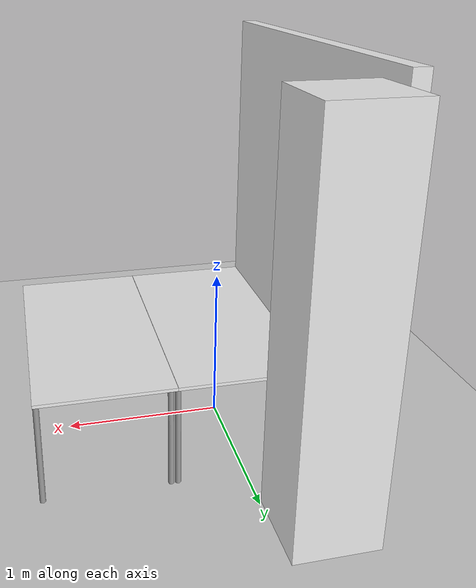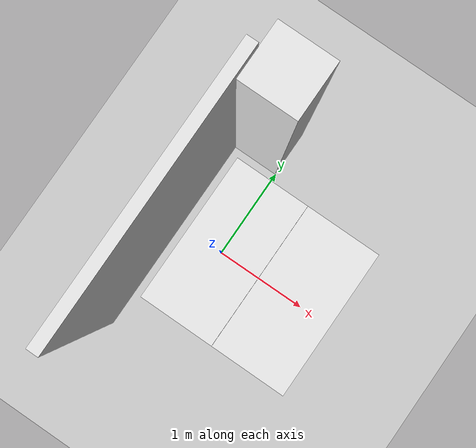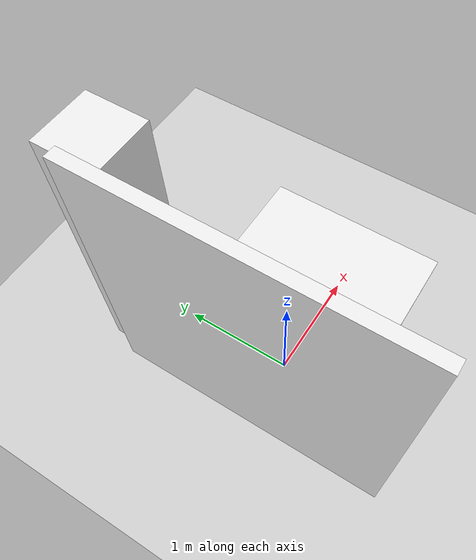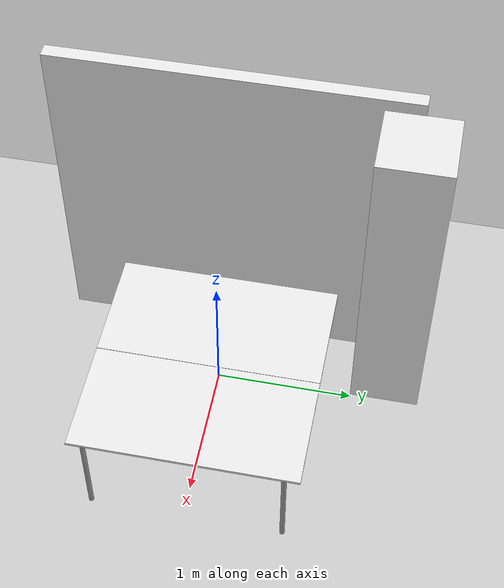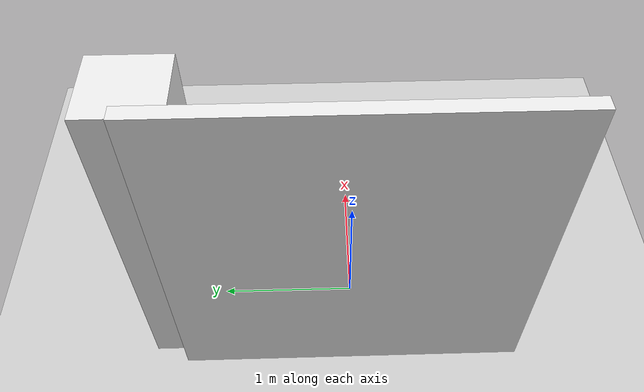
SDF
<sdf version="1.7">
 <world name="default">
  <plugin name="ros_link_attacher_plugin" filename="libgazebo_ros_link_attacher.so"/>
  <light name="sun" type="directional">
   <pose>0 0 10 0 -0 0</pose>
   <diffuse>0.8 0.8 0.8 1</diffuse>
   <specular>0.2 0.2 0.2 1</specular>
   <attenuation>
    <range>1000</range>
    <constant>0.9</constant>
    <linear>0.01</linear>
    <quadratic>0.001</quadratic>
   </attenuation>
   <direction>-0.5 0.1 -0.9</direction>
   <spot><inner_angle>0</inner_angle><outer_angle>0</outer_angle><falloff>0</falloff></spot>
  </light>
  <model name="ground_plane">
   <static>1</static>
   <link name="link1">
    <collision name="collision">
     <geometry><plane><normal>0 0 1</normal><size>100 100</size></plane></geometry>
     <surface>
      <contact><collide_bitmask>65535</collide_bitmask></contact>
      <friction><ode><mu>100</mu><mu2>50</mu2></ode></friction>
     </surface>
    </collision>
    <visual name="visual">
     <cast_shadows>0</cast_shadows>
     <geometry><plane><normal>0 0 1</normal><size>100 100</size></plane></geometry>
     <material>
      <script><uri>file://media/materials/scripts/gazebo.material</uri><name>Gazebo/Grey</name></script>
     </material>
    </visual>
   </link>
  </model>
  <gravity>0 0 -9.8</gravity>
  <magnetic_field>6e-06 2.3e-05 -4.2e-05</magnetic_field>
  <atmosphere type="adiabatic"/>
  <physics type="ode">
   <max_step_size>0.001</max_step_size>
   <real_time_factor>1</real_time_factor>
   <real_time_update_rate>1000</real_time_update_rate>
  </physics>
  <scene><ambient>0.4 0.4 0.4 1</ambient><background>0.7 0.7 0.7 1</background><shadows>1</shadows></scene>
  <spherical_coordinates>
   <surface_model>EARTH_WGS84</surface_model>
   <latitude_deg>0</latitude_deg>
   <longitude_deg>0</longitude_deg>
   <elevation>0</elevation>
   <heading_deg>0</heading_deg>
  </spherical_coordinates>
  <model name="table2">
   <link name="link2">
    <inertial>
     <inertia><ixx>0</ixx><ixy>0</ixy><ixz>0</ixz><iyy>0</iyy><iyz>0</iyz><izz>0</izz></inertia>
     <mass>0</mass>
    </inertial>
    <pose>0.011874 -0.057526 0 0 -0 0</pose>
    <visual name="back_left_leg">
     <pose>-0.68 0.38 0.35 0 -0 0</pose>
     <geometry><cylinder><radius>0.017374</radius><length>0.7</length></cylinder></geometry>
     <material>
      <script><uri>file://media/materials/scripts/gazebo.material</uri><name>Gazebo/Grey</name></script>
      <shader type="pixel"><normal_map>__default__</normal_map></shader>
      <ambient>0.3 0.3 0.3 1</ambient>
      <diffuse>0.7 0.7 0.7 1</diffuse>
      <specular>0.01 0.01 0.01 1</specular>
      <emissive>0 0 0 1</emissive>
     </material>
    </visual>
    <visual name="visual1">
     <pose>0 0 0.71 0 -0 0</pose>
     <geometry><box><size>1.58 0.8 0.019708</size></box></geometry>
     <material>
      <script><uri>file://media/materials/scripts/gazebo.material</uri><name>Gazebo/White</name></script>
      <shader type="pixel"><normal_map>__default__</normal_map></shader>
      <ambient>0.9 0.9 0.9 1</ambient>
      <diffuse>1 1 1 1</diffuse>
      <specular>0.2 0.2 0.2 1</specular>
      <emissive>0 0 0 1</emissive>
     </material>
    </visual>
    <visual name="front_left_leg">
     <pose>0.68 0.38 0.35 0 -0 0</pose>
     <geometry><cylinder><radius>0.017374</radius><length>0.7</length></cylinder></geometry>
     <material>
      <script><uri>file://media/materials/scripts/gazebo.material</uri><name>Gazebo/Grey</name></script>
      <shader type="pixel"><normal_map>__default__</normal_map></shader>
      <ambient>0.3 0.3 0.3 1</ambient>
      <diffuse>0.7 0.7 0.7 1</diffuse>
      <specular>0.01 0.01 0.01 1</specular>
      <emissive>0 0 0 1</emissive>
     </material>
    </visual>
    <visual name="back_right_leg">
     <pose>-0.68 -0.38 0.35 0 -0 0</pose>
     <geometry><cylinder><radius>0.017374</radius><length>0.7</length></cylinder></geometry>
     <material>
      <script><uri>file://media/materials/scripts/gazebo.material</uri><name>Gazebo/Grey</name></script>
      <shader type="pixel"><normal_map>__default__</normal_map></shader>
      <ambient>0.3 0.3 0.3 1</ambient>
      <diffuse>0.7 0.7 0.7 1</diffuse>
      <specular>0.01 0.01 0.01 1</specular>
      <emissive>0 0 0 1</emissive>
     </material>
    </visual>
    <visual name="front_right_leg">
     <pose>0.68 -0.38 0.35 0 -0 0</pose>
     <geometry><cylinder><radius>0.017374</radius><length>0.7</length></cylinder></geometry>
     <material>
      <script><uri>file://media/materials/scripts/gazebo.material</uri><name>Gazebo/Grey</name></script>
      <shader type="pixel"><normal_map>__default__</normal_map></shader>
      <ambient>0.3 0.3 0.3 1</ambient>
      <diffuse>0.7 0.7 0.7 1</diffuse>
      <specular>0.01 0.01 0.01 1</specular>
      <emissive>0 0 0 1</emissive>
     </material>
    </visual>
    <collision name="front_right_leg">
     <pose>0.68 -0.38 0.35 0 -0 0</pose>
     <geometry><cylinder><radius>0.017374</radius><length>0.7</length></cylinder></geometry>
     <surface>
      <friction>
       <ode><mu>1</mu><mu2>1</mu2><fdir1>0 0 0</fdir1><slip1>0</slip1><slip2>0</slip2></ode>
       <torsional>
        <coefficient>1</coefficient>
        <patch_radius>0</patch_radius>
        <surface_radius>0</surface_radius>
        <use_patch_radius>1</use_patch_radius>
        <ode><slip>0</slip></ode>
       </torsional>
      </friction>
      <bounce><restitution_coefficient>0</restitution_coefficient><threshold>1e+06</threshold></bounce>
      <contact>
       <collide_without_contact>0</collide_without_contact>
       <collide_without_contact_bitmask>1</collide_without_contact_bitmask>
       <collide_bitmask>1</collide_bitmask>
       <ode>
        <soft_cfm>0</soft_cfm>
        <soft_erp>0.2</soft_erp>
        <kp>1e+13</kp>
        <kd>1</kd>
        <max_vel>0.01</max_vel>
        <min_depth>0</min_depth>
       </ode>
       <bullet>
        <split_impulse>1</split_impulse>
        <split_impulse_penetration_threshold>-0.01</split_impulse_penetration_threshold>
        <soft_cfm>0</soft_cfm>
        <soft_erp>0.2</soft_erp>
        <kp>1e+13</kp>
        <kd>1</kd>
       </bullet>
      </contact>
     </surface>
    </collision>
    <collision name="surface">
     <pose>0 0 0.71 0 -0 0</pose>
     <geometry><box><size>1.58 0.8 0.019708</size></box></geometry>
     <surface>
      <friction>
       <ode><mu>0.6</mu><mu2>0.6</mu2><fdir1>0 0 0</fdir1><slip1>0</slip1><slip2>0</slip2></ode>
       <torsional>
        <coefficient>1</coefficient>
        <patch_radius>0</patch_radius>
        <surface_radius>0</surface_radius>
        <use_patch_radius>1</use_patch_radius>
        <ode><slip>0</slip></ode>
       </torsional>
      </friction>
      <bounce><restitution_coefficient>0</restitution_coefficient><threshold>1e+06</threshold></bounce>
      <contact>
       <collide_without_contact>0</collide_without_contact>
       <collide_without_contact_bitmask>1</collide_without_contact_bitmask>
       <collide_bitmask>1</collide_bitmask>
       <ode>
        <soft_cfm>0</soft_cfm>
        <soft_erp>0.2</soft_erp>
        <kp>1e+13</kp>
        <kd>1</kd>
        <max_vel>0.01</max_vel>
        <min_depth>0</min_depth>
       </ode>
       <bullet>
        <split_impulse>1</split_impulse>
        <split_impulse_penetration_threshold>-0.01</split_impulse_penetration_threshold>
        <soft_cfm>0</soft_cfm>
        <soft_erp>0.2</soft_erp>
        <kp>1e+13</kp>
        <kd>1</kd>
       </bullet>
      </contact>
     </surface>
    </collision>
    <collision name="front_left_leg">
     <pose>0.68 0.38 0.35 0 -0 0</pose>
     <geometry><cylinder><radius>0.017374</radius><length>0.7</length></cylinder></geometry>
     <surface>
      <friction>
       <ode><mu>1</mu><mu2>1</mu2><fdir1>0 0 0</fdir1><slip1>0</slip1><slip2>0</slip2></ode>
       <torsional>
        <coefficient>1</coefficient>
        <patch_radius>0</patch_radius>
        <surface_radius>0</surface_radius>
        <use_patch_radius>1</use_patch_radius>
        <ode><slip>0</slip></ode>
       </torsional>
      </friction>
      <bounce><restitution_coefficient>0</restitution_coefficient><threshold>1e+06</threshold></bounce>
      <contact>
       <collide_without_contact>0</collide_without_contact>
       <collide_without_contact_bitmask>1</collide_without_contact_bitmask>
       <collide_bitmask>1</collide_bitmask>
       <ode>
        <soft_cfm>0</soft_cfm>
        <soft_erp>0.2</soft_erp>
        <kp>1e+13</kp>
        <kd>1</kd>
        <max_vel>0.01</max_vel>
        <min_depth>0</min_depth>
       </ode>
       <bullet>
        <split_impulse>1</split_impulse>
        <split_impulse_penetration_threshold>-0.01</split_impulse_penetration_threshold>
        <soft_cfm>0</soft_cfm>
        <soft_erp>0.2</soft_erp>
        <kp>1e+13</kp>
        <kd>1</kd>
       </bullet>
      </contact>
     </surface>
    </collision>
    <collision name="back_left_leg">
     <pose>-0.68 0.38 0.35 0 -0 0</pose>
     <geometry><cylinder><radius>0.017374</radius><length>0.7</length></cylinder></geometry>
     <surface>
      <friction>
       <ode><mu>1</mu><mu2>1</mu2><fdir1>0 0 0</fdir1><slip1>0</slip1><slip2>0</slip2></ode>
       <torsional>
        <coefficient>1</coefficient>
        <patch_radius>0</patch_radius>
        <surface_radius>0</surface_radius>
        <use_patch_radius>1</use_patch_radius>
        <ode><slip>0</slip></ode>
       </torsional>
      </friction>
      <bounce><restitution_coefficient>0</restitution_coefficient><threshold>1e+06</threshold></bounce>
      <contact>
       <collide_without_contact>0</collide_without_contact>
       <collide_without_contact_bitmask>1</collide_without_contact_bitmask>
       <collide_bitmask>1</collide_bitmask>
       <ode>
        <soft_cfm>0</soft_cfm>
        <soft_erp>0.2</soft_erp>
        <kp>1e+13</kp>
        <kd>1</kd>
        <max_vel>0.01</max_vel>
        <min_depth>0</min_depth>
       </ode>
       <bullet>
        <split_impulse>1</split_impulse>
        <split_impulse_penetration_threshold>-0.01</split_impulse_penetration_threshold>
        <soft_cfm>0</soft_cfm>
        <soft_erp>0.2</soft_erp>
        <kp>1e+13</kp>
        <kd>1</kd>
       </bullet>
      </contact>
     </surface>
    </collision>
    <collision name="back_right_leg">
     <pose>-0.68 -0.38 0.35 0 -0 0</pose>
     <geometry><cylinder><radius>0.017374</radius><length>0.7</length></cylinder></geometry>
     <surface>
      <friction>
       <ode><mu>1</mu><mu2>1</mu2><fdir1>0 0 0</fdir1><slip1>0</slip1><slip2>0</slip2></ode>
       <torsional>
        <coefficient>1</coefficient>
        <patch_radius>0</patch_radius>
        <surface_radius>0</surface_radius>
        <use_patch_radius>1</use_patch_radius>
        <ode><slip>0</slip></ode>
       </torsional>
      </friction>
      <bounce><restitution_coefficient>0</restitution_coefficient><threshold>1e+06</threshold></bounce>
      <contact>
       <collide_without_contact>0</collide_without_contact>
       <collide_without_contact_bitmask>1</collide_without_contact_bitmask>
       <collide_bitmask>1</collide_bitmask>
       <ode>
        <soft_cfm>0</soft_cfm>
        <soft_erp>0.2</soft_erp>
        <kp>1e+13</kp>
        <kd>1</kd>
        <max_vel>0.01</max_vel>
        <min_depth>0</min_depth>
       </ode>
       <bullet>
        <split_impulse>1</split_impulse>
        <split_impulse_penetration_threshold>-0.01</split_impulse_penetration_threshold>
        <soft_cfm>0</soft_cfm>
        <soft_erp>0.2</soft_erp>
        <kp>1e+13</kp>
        <kd>1</kd>
       </bullet>
      </contact>
     </surface>
    </collision>
   </link>
   <link name="link_0">
    <inertial>
     <mass>0.605339</mass>
     <inertia>
      <ixx>0.300898</ixx>
      <ixy>0</ixy>
      <ixz>0</ixz>
      <iyy>0.301339</iyy>
      <iyz>0</iyz>
      <izz>0.025546</izz>
     </inertia>
    </inertial>
    <pose>1.2342 0.24 1.21333 0 0 -1.57</pose>
    <visual name="visual">
     <geometry><box><size>0.507519 0.498836 2.39082</size></box></geometry>
     <material>
      <lighting>1</lighting>
      <script><uri>file://media/materials/scripts/gazebo.material</uri><name>Gazebo/White</name></script>
      <shader type="pixel"><normal_map>__default__</normal_map></shader>
      <ambient>0.6 0.6 0.6 1</ambient>
      <diffuse>0.8 0.8 0.8 1</diffuse>
      <specular>0.2 0.2 0.2 1</specular>
      <emissive>0 0 0 1</emissive>
     </material>
    </visual>
    <collision name="collision">
     <geometry><box><size>0.507519 0.498836 2.39082</size></box></geometry>
     <surface>
      <friction>
       <ode><mu>1</mu><mu2>1</mu2><fdir1>0 0 0</fdir1><slip1>0</slip1><slip2>0</slip2></ode>
       <torsional>
        <coefficient>1</coefficient>
        <patch_radius>0</patch_radius>
        <surface_radius>0</surface_radius>
        <use_patch_radius>1</use_patch_radius>
        <ode><slip>0</slip></ode>
       </torsional>
      </friction>
      <bounce><restitution_coefficient>0</restitution_coefficient><threshold>1e+06</threshold></bounce>
      <contact>
       <collide_without_contact>0</collide_without_contact>
       <collide_without_contact_bitmask>1</collide_without_contact_bitmask>
       <collide_bitmask>1</collide_bitmask>
       <ode>
        <soft_cfm>0</soft_cfm>
        <soft_erp>0.2</soft_erp>
        <kp>1e+13</kp>
        <kd>1</kd>
        <max_vel>0.01</max_vel>
        <min_depth>0</min_depth>
       </ode>
       <bullet>
        <split_impulse>1</split_impulse>
        <split_impulse_penetration_threshold>-0.01</split_impulse_penetration_threshold>
        <soft_cfm>0</soft_cfm>
        <soft_erp>0.2</soft_erp>
        <kp>1e+13</kp>
        <kd>1</kd>
       </bullet>
      </contact>
     </surface>
    </collision>
   </link>
   <link name="link_1">
    <inertial>
     <mass>2.83509</mass>
     <inertia><ixx>2.13522</ixx><ixy>0</ixy><ixz>0</ixz><iyy>2.13522</iyy><iyz>0</iyz><izz>0.472514</izz></inertia>
    </inertial>
    <pose>-0 0.54 1.2435 0 0 -1.57</pose>
    <visual name="visual">
     <geometry><box><size>0.1 2.5 2.5</size></box></geometry>
     <material>
      <lighting>1</lighting>
      <script><uri>file://media/materials/scripts/gazebo.material</uri><name>Gazebo/White</name></script>
      <shader type="pixel"><normal_map>__default__</normal_map></shader>
      <ambient>0.919 0.931 0.98 1</ambient>
      <diffuse>1 1 1 1</diffuse>
      <specular>0.2 0.2 0.2 1</specular>
      <emissive>0 0 0 1</emissive>
     </material>
    </visual>
    <collision name="collision">
     <geometry><box><size>0.1 2.5 2.5</size></box></geometry>
     <surface>
      <friction>
       <ode><mu>1</mu><mu2>1</mu2><fdir1>0 0 0</fdir1><slip1>0</slip1><slip2>0</slip2></ode>
       <torsional>
        <coefficient>1</coefficient>
        <patch_radius>0</patch_radius>
        <surface_radius>0</surface_radius>
        <use_patch_radius>1</use_patch_radius>
        <ode><slip>0</slip></ode>
       </torsional>
      </friction>
      <bounce><restitution_coefficient>0</restitution_coefficient><threshold>1e+06</threshold></bounce>
      <contact>
       <collide_without_contact>0</collide_without_contact>
       <collide_without_contact_bitmask>1</collide_without_contact_bitmask>
       <collide_bitmask>1</collide_bitmask>
       <ode>
        <soft_cfm>0</soft_cfm>
        <soft_erp>0.2</soft_erp>
        <kp>1e+13</kp>
        <kd>1</kd>
        <max_vel>0.01</max_vel>
        <min_depth>0</min_depth>
       </ode>
       <bullet>
        <split_impulse>1</split_impulse>
        <split_impulse_penetration_threshold>-0.01</split_impulse_penetration_threshold>
        <soft_cfm>0</soft_cfm>
        <soft_erp>0.2</soft_erp>
        <kp>1e+13</kp>
        <kd>1</kd>
       </bullet>
      </contact>
     </surface>
    </collision>
   </link>
   <static>1</static>
   <pose>-0.022089 0.010177 0 0 -0 1.57</pose>
  </model>
  <model name="table2_2">
   <link name="link2">
    <inertial>
     <inertia><ixx>0</ixx><ixy>0</ixy><ixz>0</ixz><iyy>0</iyy><iyz>0</iyz><izz>0</izz></inertia>
     <mass>0</mass>
    </inertial>
    <pose>0.011874 -0.057526 0 0 -0 0</pose>
    <visual name="back_left_leg">
     <pose>-0.68 0.38 0.35 0 -0 0</pose>
     <geometry><cylinder><radius>0.017374</radius><length>0.7</length></cylinder></geometry>
     <material>
      <script><uri>file://media/materials/scripts/gazebo.material</uri><name>Gazebo/Grey</name></script>
      <shader type="pixel"><normal_map>__default__</normal_map></shader>
      <ambient>0.3 0.3 0.3 1</ambient>
      <diffuse>0.7 0.7 0.7 1</diffuse>
      <specular>0.01 0.01 0.01 1</specular>
      <emissive>0 0 0 1</emissive>
     </material>
    </visual>
    <visual name="visual1">
     <pose>0 0 0.71 0 -0 0</pose>
     <geometry><box><size>1.58 0.8 0.019708</size></box></geometry>
     <material>
      <script><uri>file://media/materials/scripts/gazebo.material</uri><name>Gazebo/White</name></script>
      <shader type="pixel"><normal_map>__default__</normal_map></shader>
      <ambient>0.9 0.9 0.9 1</ambient>
      <diffuse>1 1 1 1</diffuse>
      <specular>0.2 0.2 0.2 1</specular>
      <emissive>0 0 0 1</emissive>
     </material>
    </visual>
    <visual name="front_left_leg">
     <pose>0.68 0.38 0.35 0 -0 0</pose>
     <geometry><cylinder><radius>0.017374</radius><length>0.7</length></cylinder></geometry>
     <material>
      <script><uri>file://media/materials/scripts/gazebo.material</uri><name>Gazebo/Grey</name></script>
      <shader type="pixel"><normal_map>__default__</normal_map></shader>
      <ambient>0.3 0.3 0.3 1</ambient>
      <diffuse>0.7 0.7 0.7 1</diffuse>
      <specular>0.01 0.01 0.01 1</specular>
      <emissive>0 0 0 1</emissive>
     </material>
    </visual>
    <visual name="back_right_leg">
     <pose>-0.68 -0.38 0.35 0 -0 0</pose>
     <geometry><cylinder><radius>0.017374</radius><length>0.7</length></cylinder></geometry>
     <material>
      <script><uri>file://media/materials/scripts/gazebo.material</uri><name>Gazebo/Grey</name></script>
      <shader type="pixel"><normal_map>__default__</normal_map></shader>
      <ambient>0.3 0.3 0.3 1</ambient>
      <diffuse>0.7 0.7 0.7 1</diffuse>
      <specular>0.01 0.01 0.01 1</specular>
      <emissive>0 0 0 1</emissive>
     </material>
    </visual>
    <visual name="front_right_leg">
     <pose>0.68 -0.38 0.35 0 -0 0</pose>
     <geometry><cylinder><radius>0.017374</radius><length>0.7</length></cylinder></geometry>
     <material>
      <script><uri>file://media/materials/scripts/gazebo.material</uri><name>Gazebo/Grey</name></script>
      <shader type="pixel"><normal_map>__default__</normal_map></shader>
      <ambient>0.3 0.3 0.3 1</ambient>
      <diffuse>0.7 0.7 0.7 1</diffuse>
      <specular>0.01 0.01 0.01 1</specular>
      <emissive>0 0 0 1</emissive>
     </material>
    </visual>
    <collision name="front_right_leg">
     <pose>0.68 -0.38 0.35 0 -0 0</pose>
     <geometry><cylinder><radius>0.017374</radius><length>0.7</length></cylinder></geometry>
     <surface>
      <friction>
       <ode><mu>1</mu><mu2>1</mu2><fdir1>0 0 0</fdir1><slip1>0</slip1><slip2>0</slip2></ode>
       <torsional>
        <coefficient>1</coefficient>
        <patch_radius>0</patch_radius>
        <surface_radius>0</surface_radius>
        <use_patch_radius>1</use_patch_radius>
        <ode><slip>0</slip></ode>
       </torsional>
      </friction>
      <bounce><restitution_coefficient>0</restitution_coefficient><threshold>1e+06</threshold></bounce>
      <contact>
       <collide_without_contact>0</collide_without_contact>
       <collide_without_contact_bitmask>1</collide_without_contact_bitmask>
       <collide_bitmask>1</collide_bitmask>
       <ode>
        <soft_cfm>0</soft_cfm>
        <soft_erp>0.2</soft_erp>
        <kp>1e+13</kp>
        <kd>1</kd>
        <max_vel>0.01</max_vel>
        <min_depth>0</min_depth>
       </ode>
       <bullet>
        <split_impulse>1</split_impulse>
        <split_impulse_penetration_threshold>-0.01</split_impulse_penetration_threshold>
        <soft_cfm>0</soft_cfm>
        <soft_erp>0.2</soft_erp>
        <kp>1e+13</kp>
        <kd>1</kd>
       </bullet>
      </contact>
     </surface>
    </collision>
    <collision name="surface">
     <pose>0 0 0.71 0 -0 0</pose>
     <geometry><box><size>1.58 0.8 0.019708</size></box></geometry>
     <surface>
      <friction>
       <ode><mu>0.6</mu><mu2>0.6</mu2><fdir1>0 0 0</fdir1><slip1>0</slip1><slip2>0</slip2></ode>
       <torsional>
        <coefficient>1</coefficient>
        <patch_radius>0</patch_radius>
        <surface_radius>0</surface_radius>
        <use_patch_radius>1</use_patch_radius>
        <ode><slip>0</slip></ode>
       </torsional>
      </friction>
      <bounce><restitution_coefficient>0</restitution_coefficient><threshold>1e+06</threshold></bounce>
      <contact>
       <collide_without_contact>0</collide_without_contact>
       <collide_without_contact_bitmask>1</collide_without_contact_bitmask>
       <collide_bitmask>1</collide_bitmask>
       <ode>
        <soft_cfm>0</soft_cfm>
        <soft_erp>0.2</soft_erp>
        <kp>1e+13</kp>
        <kd>1</kd>
        <max_vel>0.01</max_vel>
        <min_depth>0</min_depth>
       </ode>
       <bullet>
        <split_impulse>1</split_impulse>
        <split_impulse_penetration_threshold>-0.01</split_impulse_penetration_threshold>
        <soft_cfm>0</soft_cfm>
        <soft_erp>0.2</soft_erp>
        <kp>1e+13</kp>
        <kd>1</kd>
       </bullet>
      </contact>
     </surface>
    </collision>
    <collision name="front_left_leg">
     <pose>0.68 0.38 0.35 0 -0 0</pose>
     <geometry><cylinder><radius>0.017374</radius><length>0.7</length></cylinder></geometry>
     <surface>
      <friction>
       <ode><mu>1</mu><mu2>1</mu2><fdir1>0 0 0</fdir1><slip1>0</slip1><slip2>0</slip2></ode>
       <torsional>
        <coefficient>1</coefficient>
        <patch_radius>0</patch_radius>
        <surface_radius>0</surface_radius>
        <use_patch_radius>1</use_patch_radius>
        <ode><slip>0</slip></ode>
       </torsional>
      </friction>
      <bounce><restitution_coefficient>0</restitution_coefficient><threshold>1e+06</threshold></bounce>
      <contact>
       <collide_without_contact>0</collide_without_contact>
       <collide_without_contact_bitmask>1</collide_without_contact_bitmask>
       <collide_bitmask>1</collide_bitmask>
       <ode>
        <soft_cfm>0</soft_cfm>
        <soft_erp>0.2</soft_erp>
        <kp>1e+13</kp>
        <kd>1</kd>
        <max_vel>0.01</max_vel>
        <min_depth>0</min_depth>
       </ode>
       <bullet>
        <split_impulse>1</split_impulse>
        <split_impulse_penetration_threshold>-0.01</split_impulse_penetration_threshold>
        <soft_cfm>0</soft_cfm>
        <soft_erp>0.2</soft_erp>
        <kp>1e+13</kp>
        <kd>1</kd>
       </bullet>
      </contact>
     </surface>
    </collision>
    <collision name="back_left_leg">
     <pose>-0.68 0.38 0.35 0 -0 0</pose>
     <geometry><cylinder><radius>0.017374</radius><length>0.7</length></cylinder></geometry>
     <surface>
      <friction>
       <ode><mu>1</mu><mu2>1</mu2><fdir1>0 0 0</fdir1><slip1>0</slip1><slip2>0</slip2></ode>
       <torsional>
        <coefficient>1</coefficient>
        <patch_radius>0</patch_radius>
        <surface_radius>0</surface_radius>
        <use_patch_radius>1</use_patch_radius>
        <ode><slip>0</slip></ode>
       </torsional>
      </friction>
      <bounce><restitution_coefficient>0</restitution_coefficient><threshold>1e+06</threshold></bounce>
      <contact>
       <collide_without_contact>0</collide_without_contact>
       <collide_without_contact_bitmask>1</collide_without_contact_bitmask>
       <collide_bitmask>1</collide_bitmask>
       <ode>
        <soft_cfm>0</soft_cfm>
        <soft_erp>0.2</soft_erp>
        <kp>1e+13</kp>
        <kd>1</kd>
        <max_vel>0.01</max_vel>
        <min_depth>0</min_depth>
       </ode>
       <bullet>
        <split_impulse>1</split_impulse>
        <split_impulse_penetration_threshold>-0.01</split_impulse_penetration_threshold>
        <soft_cfm>0</soft_cfm>
        <soft_erp>0.2</soft_erp>
        <kp>1e+13</kp>
        <kd>1</kd>
       </bullet>
      </contact>
     </surface>
    </collision>
    <collision name="back_right_leg">
     <pose>-0.68 -0.38 0.35 0 -0 0</pose>
     <geometry><cylinder><radius>0.017374</radius><length>0.7</length></cylinder></geometry>
     <surface>
      <friction>
       <ode><mu>1</mu><mu2>1</mu2><fdir1>0 0 0</fdir1><slip1>0</slip1><slip2>0</slip2></ode>
       <torsional>
        <coefficient>1</coefficient>
        <patch_radius>0</patch_radius>
        <surface_radius>0</surface_radius>
        <use_patch_radius>1</use_patch_radius>
        <ode><slip>0</slip></ode>
       </torsional>
      </friction>
      <bounce><restitution_coefficient>0</restitution_coefficient><threshold>1e+06</threshold></bounce>
      <contact>
       <collide_without_contact>0</collide_without_contact>
       <collide_without_contact_bitmask>1</collide_without_contact_bitmask>
       <collide_bitmask>1</collide_bitmask>
       <ode>
        <soft_cfm>0</soft_cfm>
        <soft_erp>0.2</soft_erp>
        <kp>1e+13</kp>
        <kd>1</kd>
        <max_vel>0.01</max_vel>
        <min_depth>0</min_depth>
       </ode>
       <bullet>
        <split_impulse>1</split_impulse>
        <split_impulse_penetration_threshold>-0.01</split_impulse_penetration_threshold>
        <soft_cfm>0</soft_cfm>
        <soft_erp>0.2</soft_erp>
        <kp>1e+13</kp>
        <kd>1</kd>
       </bullet>
      </contact>
     </surface>
    </collision>
   </link>
   <static>1</static>
   <pose>0.894949 0.033675 0 0 0 -1.57117</pose>
  </model>
 </world>
</sdf>
